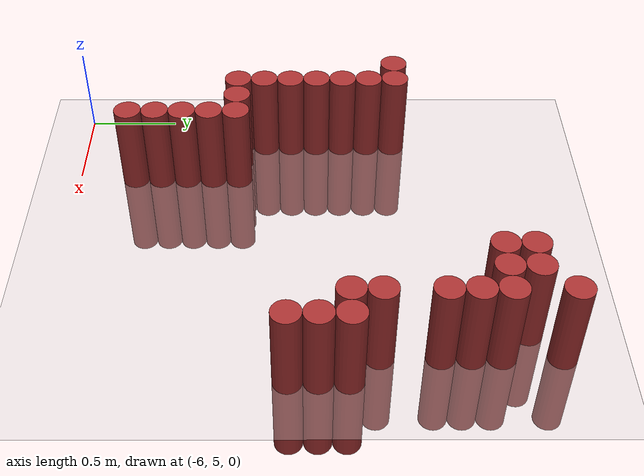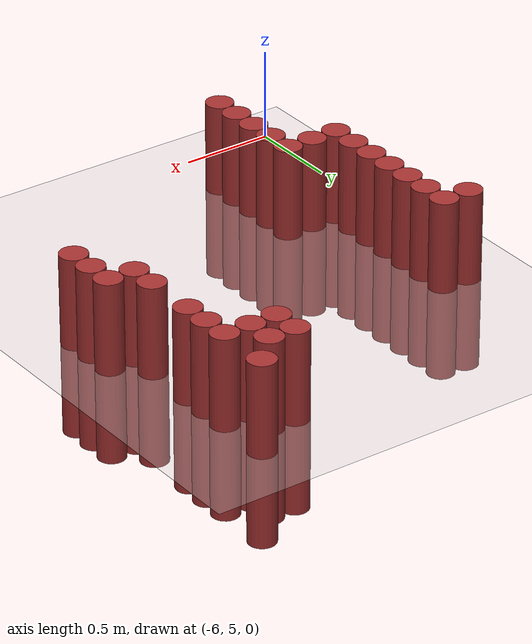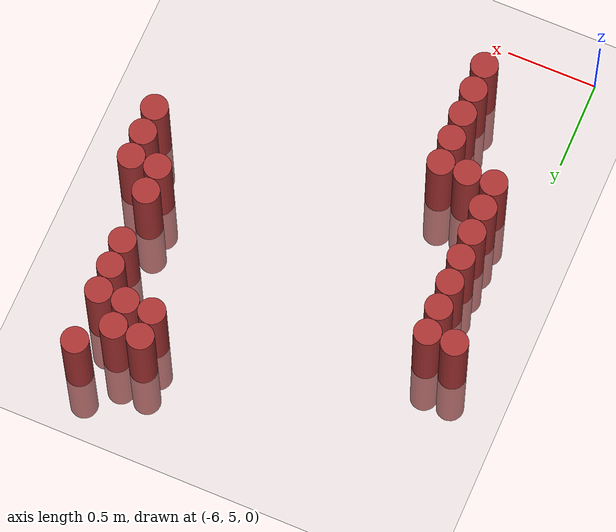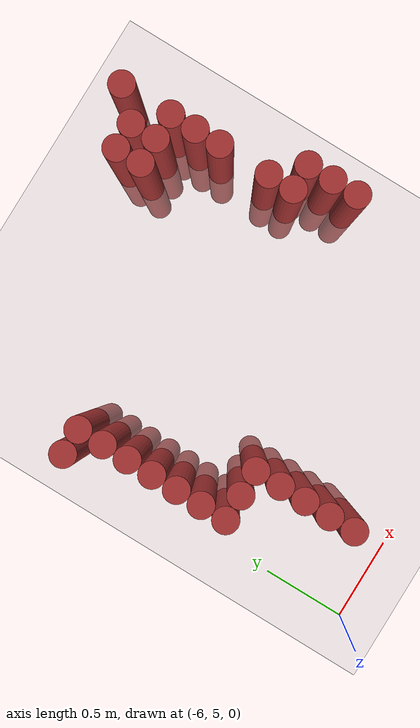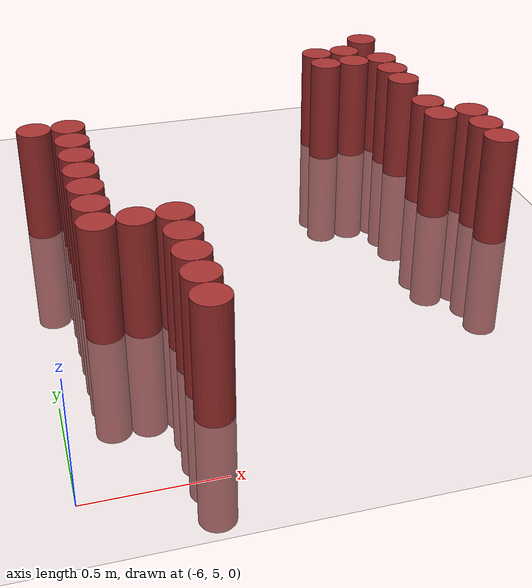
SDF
<sdf version="1.6">
 <world name="default">
  <model name="ground_plane">
   <static>1</static>
   <link name="link">
    <collision name="collision">
     <geometry><plane><normal>0 0 1</normal><size>100 100</size></plane></geometry>
     <surface><friction><ode><mu>100</mu><mu2>50</mu2></ode></friction></surface>
    </collision>
    <visual name="visual">
     <cast_shadows>0</cast_shadows>
     <geometry><plane><normal>0 0 1</normal><size>100 100</size></plane></geometry>
     <material>
      <script><uri>file://media/materials/scripts/gazebo.material</uri><name>Gazebo/Grey</name></script>
     </material>
    </visual>
   </link>
  </model>
  <model name="unit_cylinder_212">
   <static>1</static>
   <pose>-5.925000 6.825000 0.000000 0.000000 0.000000 0.000000</pose>
   <link name="link">
    <inertial>
     <mass>1</mass>
     <inertia><ixx>0.145833</ixx><ixy>0</ixy><ixz>0</ixz><iyy>0.145833</iyy><iyz>0</iyz><izz>0.125</izz></inertia>
    </inertial>
    <collision name="collision">
     <geometry><cylinder><radius>0.075000</radius><length>1</length></cylinder></geometry>
    </collision>
    <visual name="visual">
     <geometry><cylinder><radius>0.075000</radius><length>1</length></cylinder></geometry>
     <material>
      <ambient>0.648000 0.192000 0.192000 1</ambient>
      <diffuse>0.648000 0.192000 0.192000 1</diffuse>
     </material>
     <material>
      <script><name>Gazebo/Grey</name><uri>file://media/materials/scripts/gazebo.material</uri></script>
     </material>
    </visual>
   </link>
  </model>
  <model name="unit_cylinder_214">
   <static>1</static>
   <pose>-5.775000 5.925000 0.000000 0.000000 0.000000 0.000000</pose>
   <link name="link">
    <inertial>
     <mass>1</mass>
     <inertia><ixx>0.145833</ixx><ixy>0</ixy><ixz>0</ixz><iyy>0.145833</iyy><iyz>0</iyz><izz>0.125</izz></inertia>
    </inertial>
    <collision name="collision">
     <geometry><cylinder><radius>0.075000</radius><length>1</length></cylinder></geometry>
    </collision>
    <visual name="visual">
     <geometry><cylinder><radius>0.075000</radius><length>1</length></cylinder></geometry>
     <material>
      <ambient>0.648000 0.192000 0.192000 1</ambient>
      <diffuse>0.648000 0.192000 0.192000 1</diffuse>
     </material>
     <material>
      <script><name>Gazebo/Grey</name><uri>file://media/materials/scripts/gazebo.material</uri></script>
     </material>
    </visual>
   </link>
  </model>
  <model name="unit_cylinder_215">
   <static>1</static>
   <pose>-5.775000 6.075000 0.000000 0.000000 0.000000 0.000000</pose>
   <link name="link">
    <inertial>
     <mass>1</mass>
     <inertia><ixx>0.145833</ixx><ixy>0</ixy><ixz>0</ixz><iyy>0.145833</iyy><iyz>0</iyz><izz>0.125</izz></inertia>
    </inertial>
    <collision name="collision">
     <geometry><cylinder><radius>0.075000</radius><length>1</length></cylinder></geometry>
    </collision>
    <visual name="visual">
     <geometry><cylinder><radius>0.075000</radius><length>1</length></cylinder></geometry>
     <material>
      <ambient>0.648000 0.192000 0.192000 1</ambient>
      <diffuse>0.648000 0.192000 0.192000 1</diffuse>
     </material>
     <material>
      <script><name>Gazebo/Grey</name><uri>file://media/materials/scripts/gazebo.material</uri></script>
     </material>
    </visual>
   </link>
  </model>
  <model name="unit_cylinder_216">
   <static>1</static>
   <pose>-5.775000 6.225000 0.000000 0.000000 0.000000 0.000000</pose>
   <link name="link">
    <inertial>
     <mass>1</mass>
     <inertia><ixx>0.145833</ixx><ixy>0</ixy><ixz>0</ixz><iyy>0.145833</iyy><iyz>0</iyz><izz>0.125</izz></inertia>
    </inertial>
    <collision name="collision">
     <geometry><cylinder><radius>0.075000</radius><length>1</length></cylinder></geometry>
    </collision>
    <visual name="visual">
     <geometry><cylinder><radius>0.075000</radius><length>1</length></cylinder></geometry>
     <material>
      <ambient>0.648000 0.192000 0.192000 1</ambient>
      <diffuse>0.648000 0.192000 0.192000 1</diffuse>
     </material>
     <material>
      <script><name>Gazebo/Grey</name><uri>file://media/materials/scripts/gazebo.material</uri></script>
     </material>
    </visual>
   </link>
  </model>
  <model name="unit_cylinder_217">
   <static>1</static>
   <pose>-5.775000 6.375000 0.000000 0.000000 0.000000 0.000000</pose>
   <link name="link">
    <inertial>
     <mass>1</mass>
     <inertia><ixx>0.145833</ixx><ixy>0</ixy><ixz>0</ixz><iyy>0.145833</iyy><iyz>0</iyz><izz>0.125</izz></inertia>
    </inertial>
    <collision name="collision">
     <geometry><cylinder><radius>0.075000</radius><length>1</length></cylinder></geometry>
    </collision>
    <visual name="visual">
     <geometry><cylinder><radius>0.075000</radius><length>1</length></cylinder></geometry>
     <material>
      <ambient>0.648000 0.192000 0.192000 1</ambient>
      <diffuse>0.648000 0.192000 0.192000 1</diffuse>
     </material>
     <material>
      <script><name>Gazebo/Grey</name><uri>file://media/materials/scripts/gazebo.material</uri></script>
     </material>
    </visual>
   </link>
  </model>
  <model name="unit_cylinder_218">
   <static>1</static>
   <pose>-5.775000 6.525000 0.000000 0.000000 0.000000 0.000000</pose>
   <link name="link">
    <inertial>
     <mass>1</mass>
     <inertia><ixx>0.145833</ixx><ixy>0</ixy><ixz>0</ixz><iyy>0.145833</iyy><iyz>0</iyz><izz>0.125</izz></inertia>
    </inertial>
    <collision name="collision">
     <geometry><cylinder><radius>0.075000</radius><length>1</length></cylinder></geometry>
    </collision>
    <visual name="visual">
     <geometry><cylinder><radius>0.075000</radius><length>1</length></cylinder></geometry>
     <material>
      <ambient>0.648000 0.192000 0.192000 1</ambient>
      <diffuse>0.648000 0.192000 0.192000 1</diffuse>
     </material>
     <material>
      <script><name>Gazebo/Grey</name><uri>file://media/materials/scripts/gazebo.material</uri></script>
     </material>
    </visual>
   </link>
  </model>
  <model name="unit_cylinder_219">
   <static>1</static>
   <pose>-5.775000 6.675000 0.000000 0.000000 0.000000 0.000000</pose>
   <link name="link">
    <inertial>
     <mass>1</mass>
     <inertia><ixx>0.145833</ixx><ixy>0</ixy><ixz>0</ixz><iyy>0.145833</iyy><iyz>0</iyz><izz>0.125</izz></inertia>
    </inertial>
    <collision name="collision">
     <geometry><cylinder><radius>0.075000</radius><length>1</length></cylinder></geometry>
    </collision>
    <visual name="visual">
     <geometry><cylinder><radius>0.075000</radius><length>1</length></cylinder></geometry>
     <material>
      <ambient>0.648000 0.192000 0.192000 1</ambient>
      <diffuse>0.648000 0.192000 0.192000 1</diffuse>
     </material>
     <material>
      <script><name>Gazebo/Grey</name><uri>file://media/materials/scripts/gazebo.material</uri></script>
     </material>
    </visual>
   </link>
  </model>
  <model name="unit_cylinder_220">
   <static>1</static>
   <pose>-5.775000 6.825000 0.000000 0.000000 0.000000 0.000000</pose>
   <link name="link">
    <inertial>
     <mass>1</mass>
     <inertia><ixx>0.145833</ixx><ixy>0</ixy><ixz>0</ixz><iyy>0.145833</iyy><iyz>0</iyz><izz>0.125</izz></inertia>
    </inertial>
    <collision name="collision">
     <geometry><cylinder><radius>0.075000</radius><length>1</length></cylinder></geometry>
    </collision>
    <visual name="visual">
     <geometry><cylinder><radius>0.075000</radius><length>1</length></cylinder></geometry>
     <material>
      <ambient>0.648000 0.192000 0.192000 1</ambient>
      <diffuse>0.648000 0.192000 0.192000 1</diffuse>
     </material>
     <material>
      <script><name>Gazebo/Grey</name><uri>file://media/materials/scripts/gazebo.material</uri></script>
     </material>
    </visual>
   </link>
  </model>
  <model name="unit_cylinder_222">
   <static>1</static>
   <pose>-5.625000 5.925000 0.000000 0.000000 0.000000 0.000000</pose>
   <link name="link">
    <inertial>
     <mass>1</mass>
     <inertia><ixx>0.145833</ixx><ixy>0</ixy><ixz>0</ixz><iyy>0.145833</iyy><iyz>0</iyz><izz>0.125</izz></inertia>
    </inertial>
    <collision name="collision">
     <geometry><cylinder><radius>0.075000</radius><length>1</length></cylinder></geometry>
    </collision>
    <visual name="visual">
     <geometry><cylinder><radius>0.075000</radius><length>1</length></cylinder></geometry>
     <material>
      <ambient>0.648000 0.192000 0.192000 1</ambient>
      <diffuse>0.648000 0.192000 0.192000 1</diffuse>
     </material>
     <material>
      <script><name>Gazebo/Grey</name><uri>file://media/materials/scripts/gazebo.material</uri></script>
     </material>
    </visual>
   </link>
  </model>
  <model name="unit_cylinder_224">
   <static>1</static>
   <pose>-5.475000 5.325000 0.000000 0.000000 0.000000 0.000000</pose>
   <link name="link">
    <inertial>
     <mass>1</mass>
     <inertia><ixx>0.145833</ixx><ixy>0</ixy><ixz>0</ixz><iyy>0.145833</iyy><iyz>0</iyz><izz>0.125</izz></inertia>
    </inertial>
    <collision name="collision">
     <geometry><cylinder><radius>0.075000</radius><length>1</length></cylinder></geometry>
    </collision>
    <visual name="visual">
     <geometry><cylinder><radius>0.075000</radius><length>1</length></cylinder></geometry>
     <material>
      <ambient>0.648000 0.192000 0.192000 1</ambient>
      <diffuse>0.648000 0.192000 0.192000 1</diffuse>
     </material>
     <material>
      <script><name>Gazebo/Grey</name><uri>file://media/materials/scripts/gazebo.material</uri></script>
     </material>
    </visual>
   </link>
  </model>
  <model name="unit_cylinder_225">
   <static>1</static>
   <pose>-5.475000 5.475000 0.000000 0.000000 0.000000 0.000000</pose>
   <link name="link">
    <inertial>
     <mass>1</mass>
     <inertia><ixx>0.145833</ixx><ixy>0</ixy><ixz>0</ixz><iyy>0.145833</iyy><iyz>0</iyz><izz>0.125</izz></inertia>
    </inertial>
    <collision name="collision">
     <geometry><cylinder><radius>0.075000</radius><length>1</length></cylinder></geometry>
    </collision>
    <visual name="visual">
     <geometry><cylinder><radius>0.075000</radius><length>1</length></cylinder></geometry>
     <material>
      <ambient>0.648000 0.192000 0.192000 1</ambient>
      <diffuse>0.648000 0.192000 0.192000 1</diffuse>
     </material>
     <material>
      <script><name>Gazebo/Grey</name><uri>file://media/materials/scripts/gazebo.material</uri></script>
     </material>
    </visual>
   </link>
  </model>
  <model name="unit_cylinder_226">
   <static>1</static>
   <pose>-5.475000 5.625000 0.000000 0.000000 0.000000 0.000000</pose>
   <link name="link">
    <inertial>
     <mass>1</mass>
     <inertia><ixx>0.145833</ixx><ixy>0</ixy><ixz>0</ixz><iyy>0.145833</iyy><iyz>0</iyz><izz>0.125</izz></inertia>
    </inertial>
    <collision name="collision">
     <geometry><cylinder><radius>0.075000</radius><length>1</length></cylinder></geometry>
    </collision>
    <visual name="visual">
     <geometry><cylinder><radius>0.075000</radius><length>1</length></cylinder></geometry>
     <material>
      <ambient>0.648000 0.192000 0.192000 1</ambient>
      <diffuse>0.648000 0.192000 0.192000 1</diffuse>
     </material>
     <material>
      <script><name>Gazebo/Grey</name><uri>file://media/materials/scripts/gazebo.material</uri></script>
     </material>
    </visual>
   </link>
  </model>
  <model name="unit_cylinder_227">
   <static>1</static>
   <pose>-5.475000 5.775000 0.000000 0.000000 0.000000 0.000000</pose>
   <link name="link">
    <inertial>
     <mass>1</mass>
     <inertia><ixx>0.145833</ixx><ixy>0</ixy><ixz>0</ixz><iyy>0.145833</iyy><iyz>0</iyz><izz>0.125</izz></inertia>
    </inertial>
    <collision name="collision">
     <geometry><cylinder><radius>0.075000</radius><length>1</length></cylinder></geometry>
    </collision>
    <visual name="visual">
     <geometry><cylinder><radius>0.075000</radius><length>1</length></cylinder></geometry>
     <material>
      <ambient>0.648000 0.192000 0.192000 1</ambient>
      <diffuse>0.648000 0.192000 0.192000 1</diffuse>
     </material>
     <material>
      <script><name>Gazebo/Grey</name><uri>file://media/materials/scripts/gazebo.material</uri></script>
     </material>
    </visual>
   </link>
  </model>
  <model name="unit_cylinder_228">
   <static>1</static>
   <pose>-5.475000 5.925000 0.000000 0.000000 0.000000 0.000000</pose>
   <link name="link">
    <inertial>
     <mass>1</mass>
     <inertia><ixx>0.145833</ixx><ixy>0</ixy><ixz>0</ixz><iyy>0.145833</iyy><iyz>0</iyz><izz>0.125</izz></inertia>
    </inertial>
    <collision name="collision">
     <geometry><cylinder><radius>0.075000</radius><length>1</length></cylinder></geometry>
    </collision>
    <visual name="visual">
     <geometry><cylinder><radius>0.075000</radius><length>1</length></cylinder></geometry>
     <material>
      <ambient>0.648000 0.192000 0.192000 1</ambient>
      <diffuse>0.648000 0.192000 0.192000 1</diffuse>
     </material>
     <material>
      <script><name>Gazebo/Grey</name><uri>file://media/materials/scripts/gazebo.material</uri></script>
     </material>
    </visual>
   </link>
  </model>
  <model name="unit_cylinder_234">
   <static>1</static>
   <pose>-4.425000 7.275000 0.000000 0.000000 0.000000 0.000000</pose>
   <link name="link">
    <inertial>
     <mass>1</mass>
     <inertia><ixx>0.145833</ixx><ixy>0</ixy><ixz>0</ixz><iyy>0.145833</iyy><iyz>0</iyz><izz>0.125</izz></inertia>
    </inertial>
    <collision name="collision">
     <geometry><cylinder><radius>0.075000</radius><length>1</length></cylinder></geometry>
    </collision>
    <visual name="visual">
     <geometry><cylinder><radius>0.075000</radius><length>1</length></cylinder></geometry>
     <material>
      <ambient>0.648000 0.192000 0.192000 1</ambient>
      <diffuse>0.648000 0.192000 0.192000 1</diffuse>
     </material>
     <material>
      <script><name>Gazebo/Grey</name><uri>file://media/materials/scripts/gazebo.material</uri></script>
     </material>
    </visual>
   </link>
  </model>
  <model name="unit_cylinder_235">
   <static>1</static>
   <pose>-4.425000 7.425000 0.000000 0.000000 0.000000 0.000000</pose>
   <link name="link">
    <inertial>
     <mass>1</mass>
     <inertia><ixx>0.145833</ixx><ixy>0</ixy><ixz>0</ixz><iyy>0.145833</iyy><iyz>0</iyz><izz>0.125</izz></inertia>
    </inertial>
    <collision name="collision">
     <geometry><cylinder><radius>0.075000</radius><length>1</length></cylinder></geometry>
    </collision>
    <visual name="visual">
     <geometry><cylinder><radius>0.075000</radius><length>1</length></cylinder></geometry>
     <material>
      <ambient>0.648000 0.192000 0.192000 1</ambient>
      <diffuse>0.648000 0.192000 0.192000 1</diffuse>
     </material>
     <material>
      <script><name>Gazebo/Grey</name><uri>file://media/materials/scripts/gazebo.material</uri></script>
     </material>
    </visual>
   </link>
  </model>
  <model name="unit_cylinder_238">
   <static>1</static>
   <pose>-4.275000 7.275000 0.000000 0.000000 0.000000 0.000000</pose>
   <link name="link">
    <inertial>
     <mass>1</mass>
     <inertia><ixx>0.145833</ixx><ixy>0</ixy><ixz>0</ixz><iyy>0.145833</iyy><iyz>0</iyz><izz>0.125</izz></inertia>
    </inertial>
    <collision name="collision">
     <geometry><cylinder><radius>0.075000</radius><length>1</length></cylinder></geometry>
    </collision>
    <visual name="visual">
     <geometry><cylinder><radius>0.075000</radius><length>1</length></cylinder></geometry>
     <material>
      <ambient>0.648000 0.192000 0.192000 1</ambient>
      <diffuse>0.648000 0.192000 0.192000 1</diffuse>
     </material>
     <material>
      <script><name>Gazebo/Grey</name><uri>file://media/materials/scripts/gazebo.material</uri></script>
     </material>
    </visual>
   </link>
  </model>
  <model name="unit_cylinder_239">
   <static>1</static>
   <pose>-4.275000 7.425000 0.000000 0.000000 0.000000 0.000000</pose>
   <link name="link">
    <inertial>
     <mass>1</mass>
     <inertia><ixx>0.145833</ixx><ixy>0</ixy><ixz>0</ixz><iyy>0.145833</iyy><iyz>0</iyz><izz>0.125</izz></inertia>
    </inertial>
    <collision name="collision">
     <geometry><cylinder><radius>0.075000</radius><length>1</length></cylinder></geometry>
    </collision>
    <visual name="visual">
     <geometry><cylinder><radius>0.075000</radius><length>1</length></cylinder></geometry>
     <material>
      <ambient>0.648000 0.192000 0.192000 1</ambient>
      <diffuse>0.648000 0.192000 0.192000 1</diffuse>
     </material>
     <material>
      <script><name>Gazebo/Grey</name><uri>file://media/materials/scripts/gazebo.material</uri></script>
     </material>
    </visual>
   </link>
  </model>
  <model name="unit_cylinder_244">
   <static>1</static>
   <pose>-4.125000 6.525000 0.000000 0.000000 0.000000 0.000000</pose>
   <link name="link">
    <inertial>
     <mass>1</mass>
     <inertia><ixx>0.145833</ixx><ixy>0</ixy><ixz>0</ixz><iyy>0.145833</iyy><iyz>0</iyz><izz>0.125</izz></inertia>
    </inertial>
    <collision name="collision">
     <geometry><cylinder><radius>0.075000</radius><length>1</length></cylinder></geometry>
    </collision>
    <visual name="visual">
     <geometry><cylinder><radius>0.075000</radius><length>1</length></cylinder></geometry>
     <material>
      <ambient>0.648000 0.192000 0.192000 1</ambient>
      <diffuse>0.648000 0.192000 0.192000 1</diffuse>
     </material>
     <material>
      <script><name>Gazebo/Grey</name><uri>file://media/materials/scripts/gazebo.material</uri></script>
     </material>
    </visual>
   </link>
  </model>
  <model name="unit_cylinder_245">
   <static>1</static>
   <pose>-4.125000 6.675000 0.000000 0.000000 0.000000 0.000000</pose>
   <link name="link">
    <inertial>
     <mass>1</mass>
     <inertia><ixx>0.145833</ixx><ixy>0</ixy><ixz>0</ixz><iyy>0.145833</iyy><iyz>0</iyz><izz>0.125</izz></inertia>
    </inertial>
    <collision name="collision">
     <geometry><cylinder><radius>0.075000</radius><length>1</length></cylinder></geometry>
    </collision>
    <visual name="visual">
     <geometry><cylinder><radius>0.075000</radius><length>1</length></cylinder></geometry>
     <material>
      <ambient>0.648000 0.192000 0.192000 1</ambient>
      <diffuse>0.648000 0.192000 0.192000 1</diffuse>
     </material>
     <material>
      <script><name>Gazebo/Grey</name><uri>file://media/materials/scripts/gazebo.material</uri></script>
     </material>
    </visual>
   </link>
  </model>
  <model name="unit_cylinder_246">
   <static>1</static>
   <pose>-4.125000 6.975000 0.000000 0.000000 0.000000 0.000000</pose>
   <link name="link">
    <inertial>
     <mass>1</mass>
     <inertia><ixx>0.145833</ixx><ixy>0</ixy><ixz>0</ixz><iyy>0.145833</iyy><iyz>0</iyz><izz>0.125</izz></inertia>
    </inertial>
    <collision name="collision">
     <geometry><cylinder><radius>0.075000</radius><length>1</length></cylinder></geometry>
    </collision>
    <visual name="visual">
     <geometry><cylinder><radius>0.075000</radius><length>1</length></cylinder></geometry>
     <material>
      <ambient>0.648000 0.192000 0.192000 1</ambient>
      <diffuse>0.648000 0.192000 0.192000 1</diffuse>
     </material>
     <material>
      <script><name>Gazebo/Grey</name><uri>file://media/materials/scripts/gazebo.material</uri></script>
     </material>
    </visual>
   </link>
  </model>
  <model name="unit_cylinder_247">
   <static>1</static>
   <pose>-4.125000 7.125000 0.000000 0.000000 0.000000 0.000000</pose>
   <link name="link">
    <inertial>
     <mass>1</mass>
     <inertia><ixx>0.145833</ixx><ixy>0</ixy><ixz>0</ixz><iyy>0.145833</iyy><iyz>0</iyz><izz>0.125</izz></inertia>
    </inertial>
    <collision name="collision">
     <geometry><cylinder><radius>0.075000</radius><length>1</length></cylinder></geometry>
    </collision>
    <visual name="visual">
     <geometry><cylinder><radius>0.075000</radius><length>1</length></cylinder></geometry>
     <material>
      <ambient>0.648000 0.192000 0.192000 1</ambient>
      <diffuse>0.648000 0.192000 0.192000 1</diffuse>
     </material>
     <material>
      <script><name>Gazebo/Grey</name><uri>file://media/materials/scripts/gazebo.material</uri></script>
     </material>
    </visual>
   </link>
  </model>
  <model name="unit_cylinder_248">
   <static>1</static>
   <pose>-4.125000 7.275000 0.000000 0.000000 0.000000 0.000000</pose>
   <link name="link">
    <inertial>
     <mass>1</mass>
     <inertia><ixx>0.145833</ixx><ixy>0</ixy><ixz>0</ixz><iyy>0.145833</iyy><iyz>0</iyz><izz>0.125</izz></inertia>
    </inertial>
    <collision name="collision">
     <geometry><cylinder><radius>0.075000</radius><length>1</length></cylinder></geometry>
    </collision>
    <visual name="visual">
     <geometry><cylinder><radius>0.075000</radius><length>1</length></cylinder></geometry>
     <material>
      <ambient>0.648000 0.192000 0.192000 1</ambient>
      <diffuse>0.648000 0.192000 0.192000 1</diffuse>
     </material>
     <material>
      <script><name>Gazebo/Grey</name><uri>file://media/materials/scripts/gazebo.material</uri></script>
     </material>
    </visual>
   </link>
  </model>
  <model name="unit_cylinder_249">
   <static>1</static>
   <pose>-4.125000 7.575000 0.000000 0.000000 0.000000 0.000000</pose>
   <link name="link">
    <inertial>
     <mass>1</mass>
     <inertia><ixx>0.145833</ixx><ixy>0</ixy><ixz>0</ixz><iyy>0.145833</iyy><iyz>0</iyz><izz>0.125</izz></inertia>
    </inertial>
    <collision name="collision">
     <geometry><cylinder><radius>0.075000</radius><length>1</length></cylinder></geometry>
    </collision>
    <visual name="visual">
     <geometry><cylinder><radius>0.075000</radius><length>1</length></cylinder></geometry>
     <material>
      <ambient>0.648000 0.192000 0.192000 1</ambient>
      <diffuse>0.648000 0.192000 0.192000 1</diffuse>
     </material>
     <material>
      <script><name>Gazebo/Grey</name><uri>file://media/materials/scripts/gazebo.material</uri></script>
     </material>
    </visual>
   </link>
  </model>
  <model name="unit_cylinder_256">
   <static>1</static>
   <pose>-3.975000 6.225000 0.000000 0.000000 0.000000 0.000000</pose>
   <link name="link">
    <inertial>
     <mass>1</mass>
     <inertia><ixx>0.145833</ixx><ixy>0</ixy><ixz>0</ixz><iyy>0.145833</iyy><iyz>0</iyz><izz>0.125</izz></inertia>
    </inertial>
    <collision name="collision">
     <geometry><cylinder><radius>0.075000</radius><length>1</length></cylinder></geometry>
    </collision>
    <visual name="visual">
     <geometry><cylinder><radius>0.075000</radius><length>1</length></cylinder></geometry>
     <material>
      <ambient>0.648000 0.192000 0.192000 1</ambient>
      <diffuse>0.648000 0.192000 0.192000 1</diffuse>
     </material>
     <material>
      <script><name>Gazebo/Grey</name><uri>file://media/materials/scripts/gazebo.material</uri></script>
     </material>
    </visual>
   </link>
  </model>
  <model name="unit_cylinder_257">
   <static>1</static>
   <pose>-3.975000 6.375000 0.000000 0.000000 0.000000 0.000000</pose>
   <link name="link">
    <inertial>
     <mass>1</mass>
     <inertia><ixx>0.145833</ixx><ixy>0</ixy><ixz>0</ixz><iyy>0.145833</iyy><iyz>0</iyz><izz>0.125</izz></inertia>
    </inertial>
    <collision name="collision">
     <geometry><cylinder><radius>0.075000</radius><length>1</length></cylinder></geometry>
    </collision>
    <visual name="visual">
     <geometry><cylinder><radius>0.075000</radius><length>1</length></cylinder></geometry>
     <material>
      <ambient>0.648000 0.192000 0.192000 1</ambient>
      <diffuse>0.648000 0.192000 0.192000 1</diffuse>
     </material>
     <material>
      <script><name>Gazebo/Grey</name><uri>file://media/materials/scripts/gazebo.material</uri></script>
     </material>
    </visual>
   </link>
  </model>
  <model name="unit_cylinder_258">
   <static>1</static>
   <pose>-3.975000 6.525000 0.000000 0.000000 0.000000 0.000000</pose>
   <link name="link">
    <inertial>
     <mass>1</mass>
     <inertia><ixx>0.145833</ixx><ixy>0</ixy><ixz>0</ixz><iyy>0.145833</iyy><iyz>0</iyz><izz>0.125</izz></inertia>
    </inertial>
    <collision name="collision">
     <geometry><cylinder><radius>0.075000</radius><length>1</length></cylinder></geometry>
    </collision>
    <visual name="visual">
     <geometry><cylinder><radius>0.075000</radius><length>1</length></cylinder></geometry>
     <material>
      <ambient>0.648000 0.192000 0.192000 1</ambient>
      <diffuse>0.648000 0.192000 0.192000 1</diffuse>
     </material>
     <material>
      <script><name>Gazebo/Grey</name><uri>file://media/materials/scripts/gazebo.material</uri></script>
     </material>
    </visual>
   </link>
  </model>
 </world>
</sdf>
